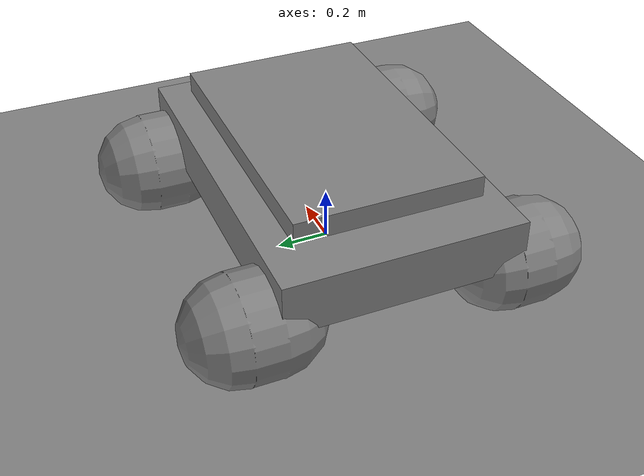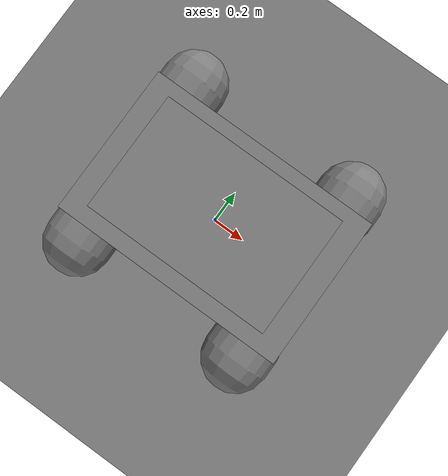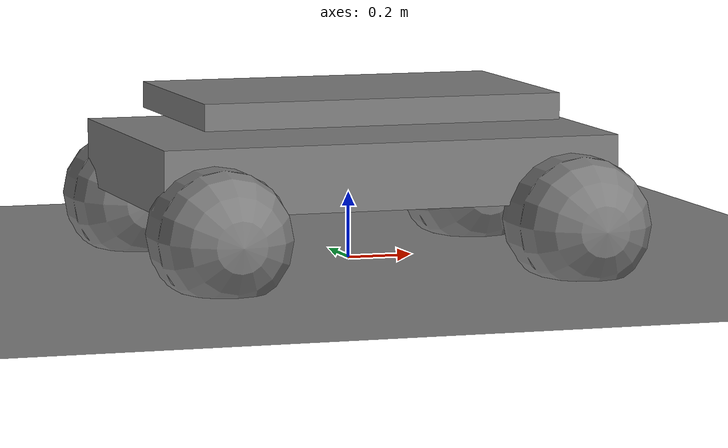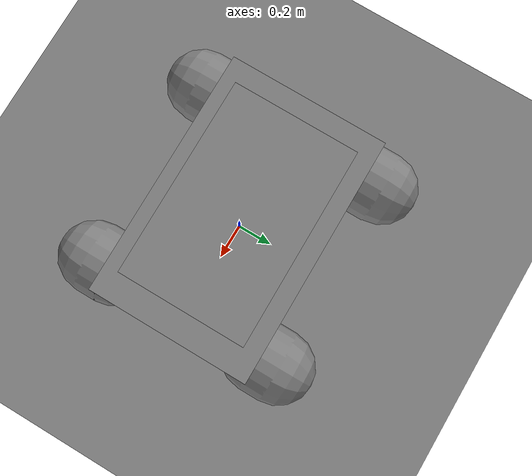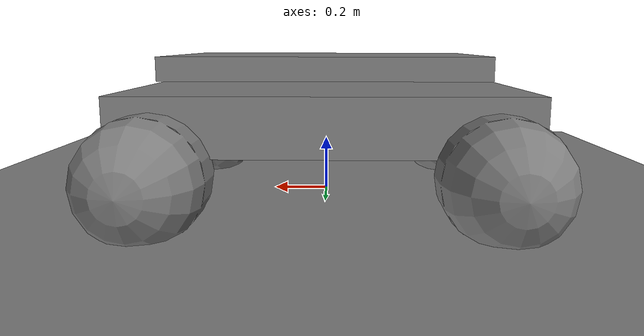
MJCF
<mujoco model="kusawake_mjx">
  <compiler angle="degree" coordinate="local" inertiafromgeom="true"/>
  <option timestep="0.002" iterations="20" solver="Newton" gravity="0 0 -9.81"/>

  <default>
    <joint armature="0.01" damping="0.5"/>
    <geom contype="1" conaffinity="1" friction="0.9 0.1 0.05"/>
    <motor ctrllimited="true" ctrlrange="-1 1"/>
  </default>

  <worldbody>
    <geom name="ground" type="plane" size="15 15 0.1"/>

    <body name="chassis" pos="0 0 0.30">
      <freejoint name="root"/>
      <geom name="chassis_box" type="box" size="0.70 0.45 0.10" mass="250"/>
      <geom name="deck" type="box" pos="0 0 0.18" size="0.55 0.35 0.04" mass="50"/>

      <body name="steer_fl" pos="0.55 0.50 -0.05">
        <joint name="steer_fl" type="hinge" axis="0 0 1" range="-45 45" damping="2"/>
        <geom type="sphere" size="0.04" mass="0.5" contype="0" conaffinity="0"/>
        <body name="wheel_fl" pos="0 0 -0.10">
          <joint name="drive_fl" type="hinge" axis="0 1 0" damping="0.1"/>
          <geom type="capsule" size="0.20 0.06" euler="90 0 0" mass="6" friction="1.2 0.05 0.05"/>
        </body>
      </body>

      <body name="steer_fr" pos="0.55 -0.50 -0.05">
        <joint name="steer_fr" type="hinge" axis="0 0 1" range="-45 45" damping="2"/>
        <geom type="sphere" size="0.04" mass="0.5" contype="0" conaffinity="0"/>
        <body name="wheel_fr" pos="0 0 -0.10">
          <joint name="drive_fr" type="hinge" axis="0 1 0" damping="0.1"/>
          <geom type="capsule" size="0.20 0.06" euler="90 0 0" mass="6" friction="1.2 0.05 0.05"/>
        </body>
      </body>

      <body name="steer_rl" pos="-0.55 0.50 -0.05">
        <joint name="steer_rl" type="hinge" axis="0 0 1" range="-45 45" damping="2"/>
        <geom type="sphere" size="0.04" mass="0.5" contype="0" conaffinity="0"/>
        <body name="wheel_rl" pos="0 0 -0.10">
          <joint name="drive_rl" type="hinge" axis="0 1 0" damping="0.1"/>
          <geom type="capsule" size="0.20 0.06" euler="90 0 0" mass="6" friction="1.2 0.05 0.05"/>
        </body>
      </body>

      <body name="steer_rr" pos="-0.55 -0.50 -0.05">
        <joint name="steer_rr" type="hinge" axis="0 0 1" range="-45 45" damping="2"/>
        <geom type="sphere" size="0.04" mass="0.5" contype="0" conaffinity="0"/>
        <body name="wheel_rr" pos="0 0 -0.10">
          <joint name="drive_rr" type="hinge" axis="0 1 0" damping="0.1"/>
          <geom type="capsule" size="0.20 0.06" euler="90 0 0" mass="6" friction="1.2 0.05 0.05"/>
        </body>
      </body>
    </body>
  </worldbody>

  <actuator>
    <position name="steer_fl_act" joint="steer_fl" kp="200" ctrlrange="-0.785 0.785"/>
    <position name="steer_fr_act" joint="steer_fr" kp="200" ctrlrange="-0.785 0.785"/>
    <position name="steer_rl_act" joint="steer_rl" kp="200" ctrlrange="-0.785 0.785"/>
    <position name="steer_rr_act" joint="steer_rr" kp="200" ctrlrange="-0.785 0.785"/>
    <velocity name="drive_fl_act" joint="drive_fl" kv="20" ctrlrange="-8 8"/>
    <velocity name="drive_fr_act" joint="drive_fr" kv="20" ctrlrange="-8 8"/>
    <velocity name="drive_rl_act" joint="drive_rl" kv="20" ctrlrange="-8 8"/>
    <velocity name="drive_rr_act" joint="drive_rr" kv="20" ctrlrange="-8 8"/>
  </actuator>
</mujoco>
